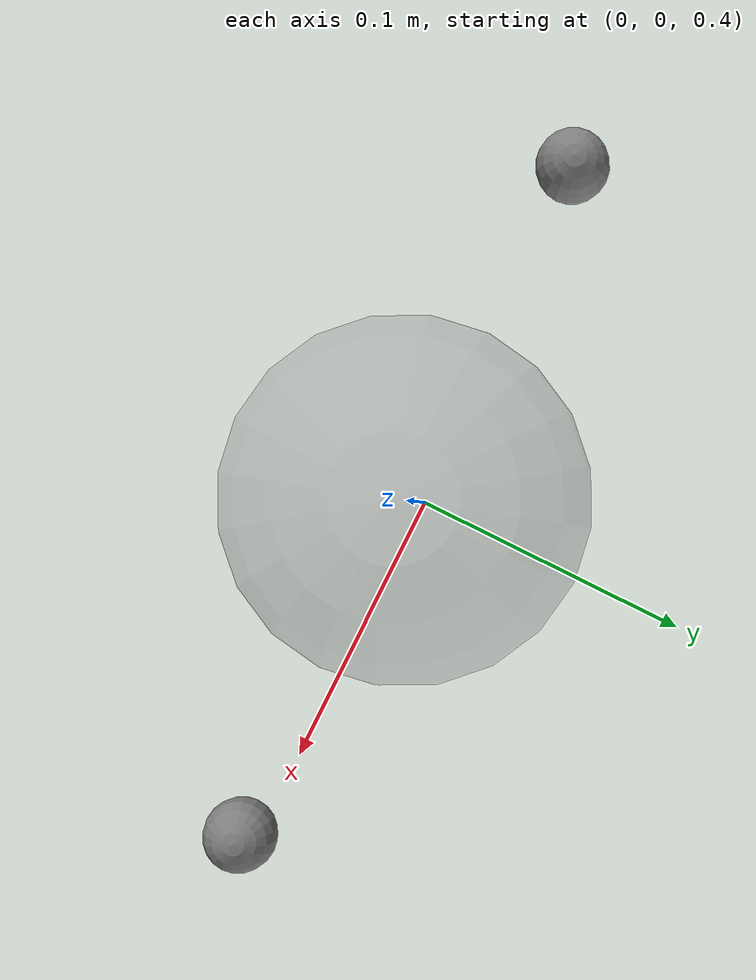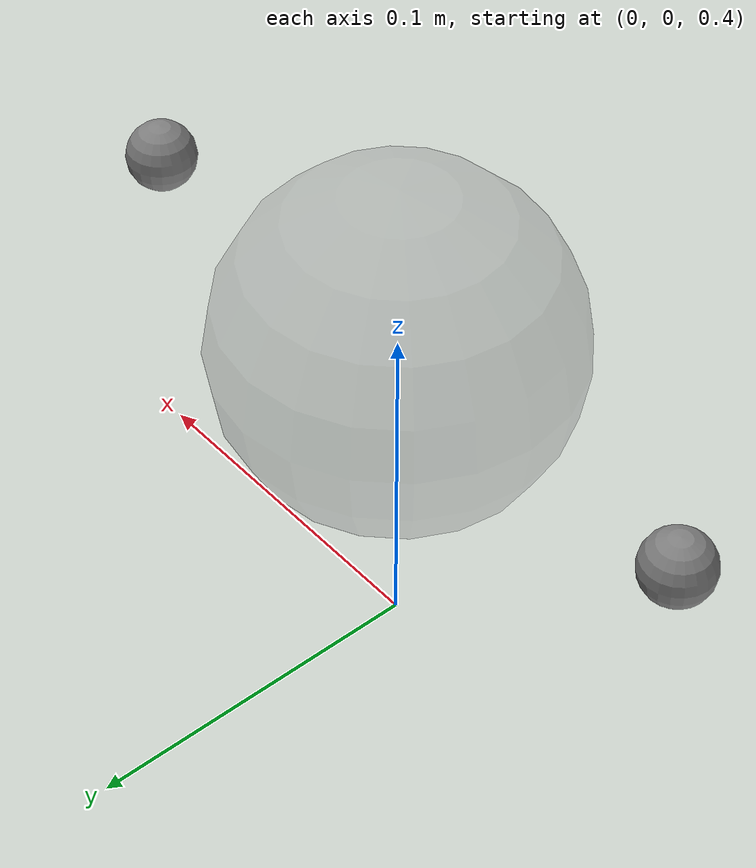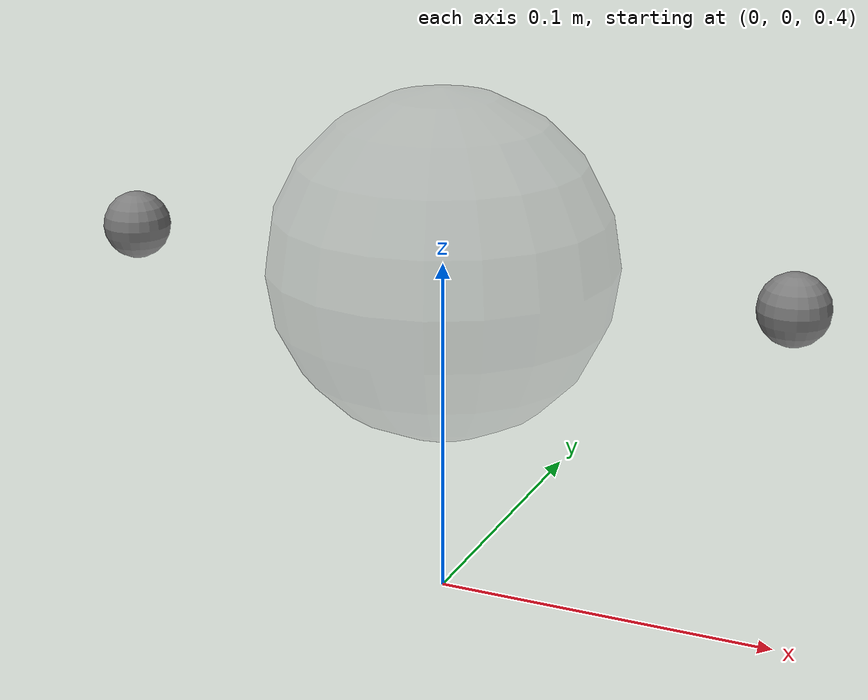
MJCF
<mujoco model="floating_grippers">
  <compiler angle="radian" autolimits="true"/>

  <option gravity="0 0 -9.81" timestep="0.001"/>

  <default>
    <joint damping="0.1"/>
    <geom contype="1" conaffinity="1" friction="0.5 0.005 0.0001"/>
  </default>

  <worldbody>
    <!-- Dummy robot structure to satisfy Robot class requirements -->
    <!-- The actual floating grippers will be added via mocap bodies -->

    <!-- Central dummy body to serve as pelvis -->
    <body name="dummy_base" pos="0 0 0.5">
      <inertial pos="0 0 0" mass="1.0" diaginertia="0.01 0.01 0.01"/>
      <geom name="dummy_base_geom" type="sphere" size="0.05" rgba="0.5 0.5 0.5 0.3" contype="0" conaffinity="0"/>

      <!-- Dummy joints for the Robot class -->
      <body name="dummy_link1" pos="0.1 0 0">
        <joint name="dummy_joint1" type="hinge" axis="1 0 0" range="-0.1 0.1"/>
        <inertial pos="0 0 0" mass="0.1" diaginertia="0.001 0.001 0.001"/>
        <geom name="dummy_geom1" type="sphere" size="0.01" contype="0" conaffinity="0"/>
      </body>

      <body name="dummy_link2" pos="-0.1 0 0">
        <joint name="dummy_joint2" type="hinge" axis="1 0 0" range="-0.1 0.1"/>
        <inertial pos="0 0 0" mass="0.1" diaginertia="0.001 0.001 0.001"/>
        <geom name="dummy_geom2" type="sphere" size="0.01" contype="0" conaffinity="0"/>
      </body>

      <!-- Dummy sites required by Robot class config (not actually used) -->
      <!-- Making them very small and transparent -->
      <site name="left_gripper_site" pos="0 0 0" size="0.001" rgba="0 0 0 0"/>
      <site name="right_gripper_site" pos="0 0 0" size="0.001" rgba="0 0 0 0"/>
    </body>
  </worldbody>

  <actuator>
    <!-- Dummy actuators to satisfy Robot class -->
    <position name="dummy_actuator1" joint="dummy_joint1" kp="10"/>
    <position name="dummy_actuator2" joint="dummy_joint2" kp="10"/>
  </actuator>
</mujoco>
